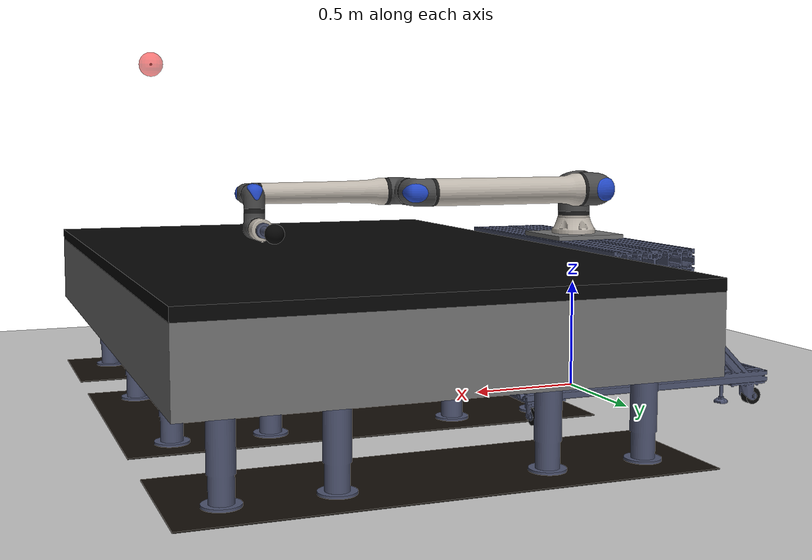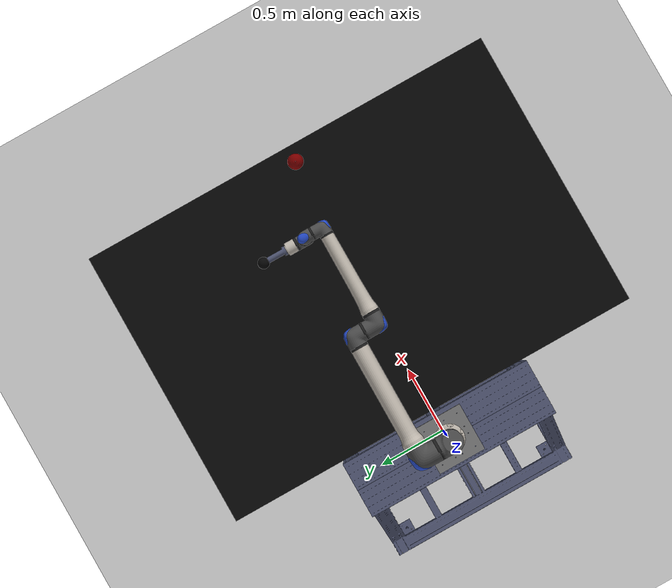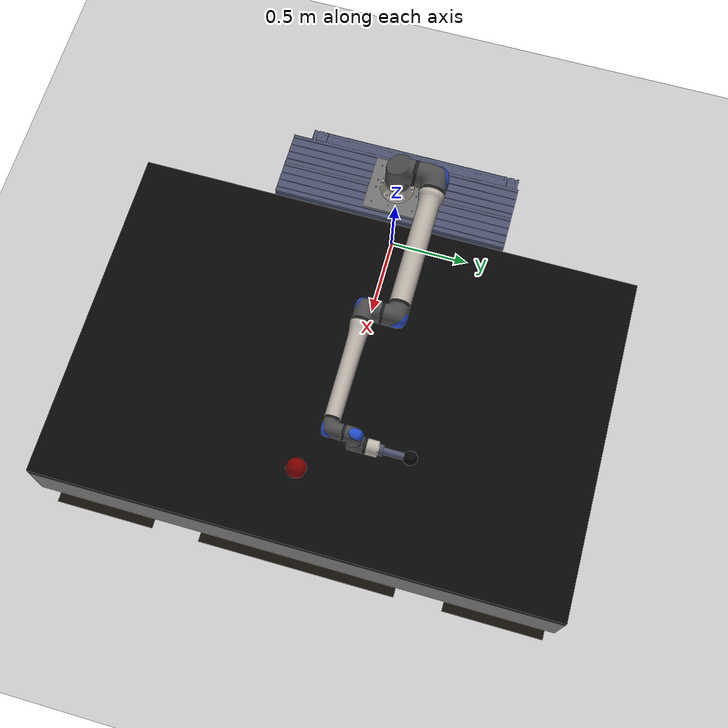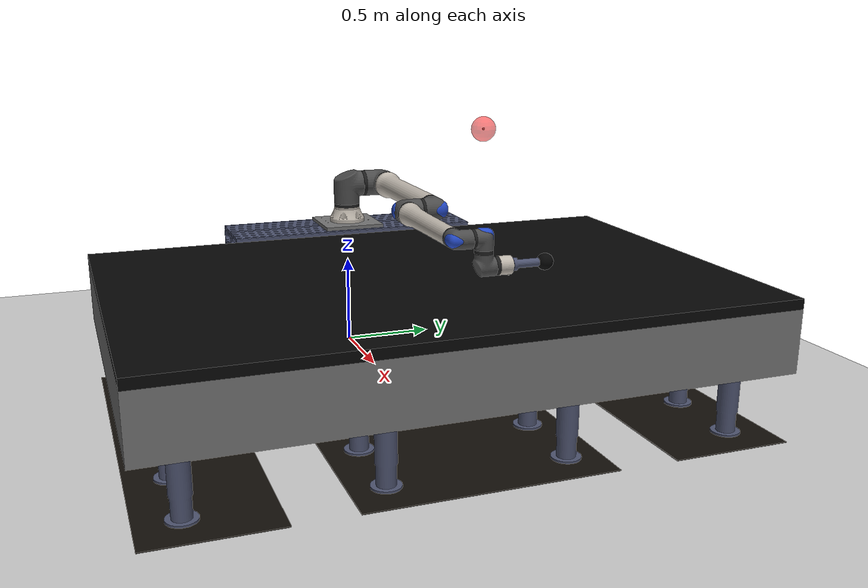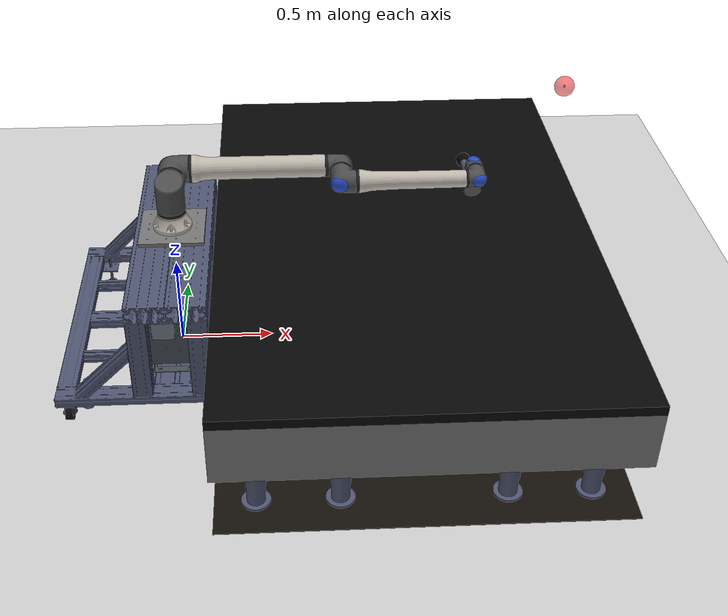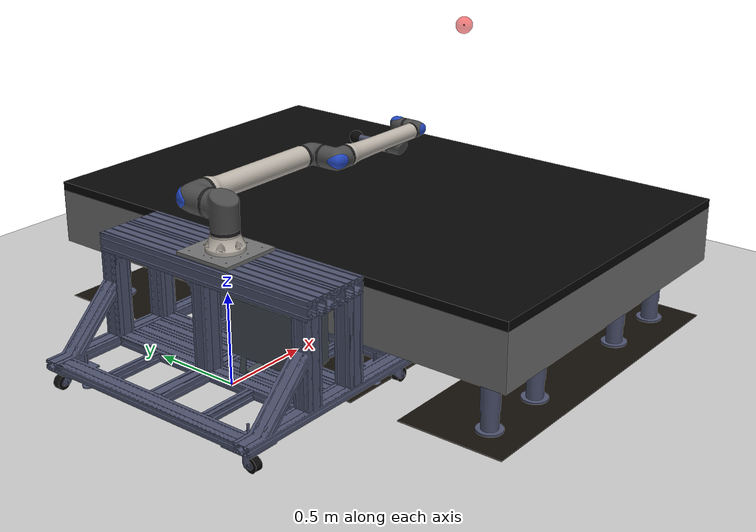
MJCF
<?xml version='1.0' encoding='utf-8'?>
<mujoco model="meios">
  <compiler angle="radian" />

  <default>
    <default class="visual">
      <geom type="mesh" group="2" contype="0" conaffinity="0" />
    </default>
    <default class="collision">
      <geom type="mesh" group="3" />
    </default>
  </default>

  <asset>
    <mesh name="UR8LongWorkbench_0" file="assets/UR8LongWorkbench_0.obj" content_type="model/obj" />
    <mesh name="UR8LongWorkbench_1" file="assets/UR8LongWorkbench_1.obj" content_type="model/obj" />
    <mesh name="UR8LongWorkbench_2" file="assets/UR8LongWorkbench_2.obj" content_type="model/obj" />
    <mesh name="UR8LongWorkbench_3" file="assets/UR8LongWorkbench_3.obj" content_type="model/obj" />
    <mesh name="GraniteTable_0" file="assets/GraniteTable_0.obj" content_type="model/obj" />
    <mesh name="GraniteTable_1" file="assets/GraniteTable_1.obj" content_type="model/obj" />
    <mesh name="GraniteTable_2" file="assets/GraniteTable_2.obj" content_type="model/obj" />
    <mesh name="GraniteTable_3" file="assets/GraniteTable_3.obj" content_type="model/obj" />
    <mesh name="base_0" file="assets/base_0.obj" content_type="model/obj" />
    <mesh name="base_1" file="assets/base_1.obj" content_type="model/obj" />
    <mesh name="base_2" file="assets/base_2.obj" content_type="model/obj" />
    <mesh name="shoulder_0" file="assets/shoulder_0.obj" content_type="model/obj" />
    <mesh name="shoulder_1" file="assets/shoulder_1.obj" content_type="model/obj" />
    <mesh name="upperarm_0" file="assets/upperarm_0.obj" content_type="model/obj" />
    <mesh name="upperarm_1" file="assets/upperarm_1.obj" content_type="model/obj" />
    <mesh name="upperarm_2" file="assets/upperarm_2.obj" content_type="model/obj" />
    <mesh name="upperarm_3" file="assets/upperarm_3.obj" content_type="model/obj" />
    <mesh name="forearm_0" file="assets/forearm_0.obj" content_type="model/obj" />
    <mesh name="forearm_1" file="assets/forearm_1.obj" content_type="model/obj" />
    <mesh name="forearm_2" file="assets/forearm_2.obj" content_type="model/obj" />
    <mesh name="forearm_3" file="assets/forearm_3.obj" content_type="model/obj" />
    <mesh name="wrist1_0" file="assets/wrist1_0.obj" content_type="model/obj" />
    <mesh name="wrist1_1" file="assets/wrist1_1.obj" content_type="model/obj" />
    <mesh name="wrist1_2" file="assets/wrist1_2.obj" content_type="model/obj" />
    <mesh name="wrist2_0" file="assets/wrist2_0.obj" content_type="model/obj" />
    <mesh name="wrist2_1" file="assets/wrist2_1.obj" content_type="model/obj" />
    <mesh name="wrist3" file="assets/wrist3.obj" content_type="model/obj" />
    <mesh name="SimpleRodEndEffector_0" file="assets/SimpleRodEndEffector_0.obj" content_type="model/obj" />
    <mesh name="SimpleRodEndEffector_1" file="assets/SimpleRodEndEffector_1.obj" content_type="model/obj" />
    <material name="Material.002" rgba="0.4538652 0.4538652 0.4538652 1.0" shininess="0.01" specular="0.400000006" />
    <material name="Material.005" rgba="0.0413336605 0.0413336605 0.0413336605 1.0" shininess="0.01" specular="0.400000006" />
    <material name="mat_0" rgba="0.304448187 0.328116894 0.437909514 1.0" shininess="0.01" specular="0.400000006" />
    <material name="mat_1" rgba="0.265210003 0.292892992 0.322058111 1.0" shininess="0.01" specular="0.400000006" />
    <material name="Material.001" rgba="0.0271487199 0.0271487199 0.0271487199 1.0" shininess="0.01" specular="0.400000006" />
    <material name="Material.003" rgba="0.0730518326 0.0555744693 0.0355741605 1.0" shininess="0.01" specular="0.400000006" />
    <texture name="UR15_DIFF_8bit_2K" type="2d" file="assets/UR15_DIFF_8bit_2K.png" />
    <material name="LED_001_COLOR_0" shininess="0.01" specular="0.400000006" texture="UR15_DIFF_8bit_2K" />
    <material name="Metal_Alu_Brushed_002_COLOR_0" shininess="0.01" specular="0.400000006" texture="UR15_DIFF_8bit_2K" />
    <material name="Rubber_Black_002_COLOR_0" shininess="0.01" specular="0.400000006" texture="UR15_DIFF_8bit_2K" />
    <material name="Metal_DarkGray_002_COLOR_0" shininess="0.01" specular="0.400000006" texture="UR15_DIFF_8bit_2K" />
    <texture name="UR8Long_DIFF_8bit_2K" type="2d" file="assets/UR8Long_DIFF_8bit_2K.png" />
    <material name="Metal_Alu_Brushed.001" shininess="0.01" specular="0.400000006" texture="UR8Long_DIFF_8bit_2K" />
    <material name="Metal_DarkGray.001" shininess="0.01" specular="0.400000006" texture="UR8Long_DIFF_8bit_2K" />
    <material name="Plastic_Blue" shininess="0.01" specular="0.400000006" texture="UR8Long_DIFF_8bit_2K" />
    <material name="Rubber_Black.001" shininess="0.01" specular="0.400000006" texture="UR8Long_DIFF_8bit_2K" />
    <material name="Metal_DarkGray_003" shininess="0.01" specular="0.400000006" texture="UR15_DIFF_8bit_2K" />
    <material name="Plastic_Blue_001" shininess="0.01" specular="0.400000006" texture="UR15_DIFF_8bit_2K" />
    <material name="Rubber_Black_003" shininess="0.01" specular="0.400000006" texture="UR15_DIFF_8bit_2K" />
  </asset>

  <worldbody>
    <geom class="visual" pos="0 0 0.74" quat="1 0 0 0" material="mat_1" mesh="UR8LongWorkbench_0" />
    <geom class="visual" pos="0 0 0.74" quat="1 0 0 0" material="Material.002" mesh="UR8LongWorkbench_1" />
    <geom class="visual" pos="0 0 0.74" quat="1 0 0 0" material="Material.005" mesh="UR8LongWorkbench_2" />
    <geom class="visual" pos="0 0 0.74" quat="1 0 0 0" material="mat_0" mesh="UR8LongWorkbench_3" />
    <geom class="collision" pos="0 0 0.74" quat="1 0 0 0" mesh="UR8LongWorkbench_0" />
    <geom class="collision" pos="0 0 0.74" quat="1 0 0 0" mesh="UR8LongWorkbench_1" />
    <geom class="collision" pos="0 0 0.74" quat="1 0 0 0" mesh="UR8LongWorkbench_2" />
    <geom class="collision" pos="0 0 0.74" quat="1 0 0 0" mesh="UR8LongWorkbench_3" />
    <geom class="visual" pos="0 0 0.74" quat="-1 0 0 0" material="LED_001_COLOR_0" mesh="base_0" />
    <geom class="visual" pos="0 0 0.74" quat="-1 0 0 0" material="Rubber_Black_002_COLOR_0" mesh="base_1" />
    <geom class="visual" pos="0 0 0.74" quat="-1 0 0 0" material="Metal_Alu_Brushed_002_COLOR_0" mesh="base_2" />
    <geom class="collision" pos="0 0 0.74" quat="-1 0 0 0" mesh="base_0" />
    <geom class="collision" pos="0 0 0.74" quat="-1 0 0 0" mesh="base_1" />
    <geom class="collision" pos="0 0 0.74" quat="-1 0 0 0" mesh="base_2" />
    <geom class="visual" pos="1.22 0 0" quat="1 0 0 0" material="Material.003" mesh="GraniteTable_0" />
    <geom class="visual" pos="1.22 0 0" quat="1 0 0 0" material="mat_0" mesh="GraniteTable_1" />
    <geom class="visual" pos="1.22 0 0" quat="1 0 0 0" material="Material.002" mesh="GraniteTable_2" />
    <geom class="visual" pos="1.22 0 0" quat="1 0 0 0" material="Material.001" mesh="GraniteTable_3" />
    <geom class="collision" pos="1.22 0 0" quat="1 0 0 0" mesh="GraniteTable_0" />
    <geom class="collision" pos="1.22 0 0" quat="1 0 0 0" mesh="GraniteTable_1" />
    <geom class="collision" pos="1.22 0 0" quat="1 0 0 0" mesh="GraniteTable_2" />
    <geom class="collision" pos="1.22 0 0" quat="1 0 0 0" mesh="GraniteTable_3" friction="0 0 0" priority="2" />
    <body name="ur_main/shoulder_link" pos="0 0 0.9586" quat="0 0 0 1">
      <inertial pos="2.4e-05 -0.025304 -0.033309" quat="0.695667 0.163117 -0.158899 0.681316" diaginertia="0.0520589 0.0513337 0.0299064" mass="9.9883" />
      <joint name="ur_main/shoulder_pan_joint" pos="0 0 0" axis="0 0 1" actuatorfrcrange="-433 433" range="-6.28319 6.28319" damping="100" stiffness="0.1" />
      <geom class="visual" pos="0 0 0" quat="0 0 0 1" material="Rubber_Black_002_COLOR_0" mesh="shoulder_0" />
      <geom class="visual" pos="0 0 0" quat="0 0 0 1" material="Metal_DarkGray_002_COLOR_0" mesh="shoulder_1" />
      <geom class="collision" pos="0 0 0" quat="0 0 0 1" mesh="shoulder_0" />
      <geom class="collision" pos="0 0 0" quat="0 0 0 1" mesh="shoulder_1" />
      <body name="ur_main/upper_arm_link" quat="0.707107 0.707107 0 0">
        <inertial pos="-0.333471 -7.4e-05 0.19542" quat="0.506621 0.493391 0.495006 0.504845" diaginertia="2.44012 2.43401 0.0554434" mass="17.0738" />
        <joint name="ur_main/shoulder_lift_joint" pos="0 0 0" axis="0 0 1" actuatorfrcrange="-433 433" range="-1.1 -1.0" damping="100" stiffness="0.1" />
        <geom class="visual" pos="0 0 0.109" quat="0.5 0.5 -0.5 -0.5" material="Rubber_Black.001" mesh="upperarm_0" />
        <geom class="visual" pos="0 0 0.109" quat="0.5 0.5 -0.5 -0.5" material="Metal_Alu_Brushed.001" mesh="upperarm_1" />
        <geom class="visual" pos="0 0 0.109" quat="0.5 0.5 -0.5 -0.5" material="Metal_DarkGray.001" mesh="upperarm_2" />
        <geom class="visual" pos="0 0 0.109" quat="0.5 0.5 -0.5 -0.5" material="Plastic_Blue" mesh="upperarm_3" />
        <geom class="collision" pos="0 0 0.109" quat="0.5 0.5 -0.5 -0.5" mesh="upperarm_0" />
        <geom class="collision" pos="0 0 0.109" quat="0.5 0.5 -0.5 -0.5" mesh="upperarm_1" />
        <geom class="collision" pos="0 0 0.109" quat="0.5 0.5 -0.5 -0.5" mesh="upperarm_2" />
        <geom class="collision" pos="0 0 0.109" quat="0.5 0.5 -0.5 -0.5" mesh="upperarm_3" />
        <body name="ur_main/forearm_link" pos="-0.8989 0 0">
          <inertial pos="-0.298798 5.8e-05 0.065663" quat="0.491605 0.508309 0.507913 0.491905" diaginertia="0.633274 0.626536 0.0215007" mass="7.6393" />
          <joint name="ur_main/elbow_joint" pos="0 0 0" axis="0 0 1" actuatorfrcrange="-204 204" range="0.8 0.81" damping="100" stiffness="0.1" />
          <geom class="visual" pos="0 0 0.134242" quat="0.5 0.5 -0.5 -0.5" material="Rubber_Black.001" mesh="forearm_0" />
          <geom class="visual" pos="0 0 0.134242" quat="0.5 0.5 -0.5 -0.5" material="Metal_Alu_Brushed.001" mesh="forearm_1" />
          <geom class="visual" pos="0 0 0.134242" quat="0.5 0.5 -0.5 -0.5" material="Metal_DarkGray.001" mesh="forearm_2" />
          <geom class="visual" pos="0 0 0.134242" quat="0.5 0.5 -0.5 -0.5" material="Plastic_Blue" mesh="forearm_3" />
          <geom class="collision" pos="0 0 0.134242" quat="0.5 0.5 -0.5 -0.5" mesh="forearm_0" />
          <geom class="collision" pos="0 0 0.134242" quat="0.5 0.5 -0.5 -0.5" mesh="forearm_1" />
          <geom class="collision" pos="0 0 0.134242" quat="0.5 0.5 -0.5 -0.5" mesh="forearm_2" />
          <geom class="collision" pos="0 0 0.134242" quat="0.5 0.5 -0.5 -0.5" mesh="forearm_3" />
          <body name="ur_main/wrist_1_link" pos="-0.7149 0 0.1824">
            <inertial pos="2.5e-05 -0.016413 -0.019695" quat="0.833332 0.5518 -0.0145415 0.0293715" diaginertia="0.00433968 0.00421107 0.00224825" mass="2.089" />
            <joint name="ur_main/wrist_1_joint" pos="0 0 0" axis="0 0 1" actuatorfrcrange="-70 70" range="1.0 1.1" damping="100" stiffness="0.1" />
            <geom class="visual" pos="0 0 -0.0502" quat="0.707107 0.707107 0 0" material="Plastic_Blue_001" mesh="wrist1_0" />
            <geom class="visual" pos="0 0 -0.0502" quat="0.707107 0.707107 0 0" material="Rubber_Black_003" mesh="wrist1_1" />
            <geom class="visual" pos="0 0 -0.0502" quat="0.707107 0.707107 0 0" material="Metal_DarkGray_003" mesh="wrist1_2" />
            <geom class="collision" pos="0 0 -0.0502" quat="0.707107 0.707107 0 0" mesh="wrist1_0" />
            <geom class="collision" pos="0 0 -0.0502" quat="0.707107 0.707107 0 0" mesh="wrist1_1" />
            <geom class="collision" pos="0 0 -0.0502" quat="0.707107 0.707107 0 0" mesh="wrist1_2" />
            <body name="ur_main/wrist_2_link" pos="0 -0.1361 -2.79146e-11" quat="0.707107 0.707107 0 0">
              <inertial pos="2.5e-05 0.015886 -0.01996" quat="0.548572 0.831821 0.0724532 -0.0435051" diaginertia="0.00428972 0.00423268 0.0022586" mass="2.0869" />
              <joint name="ur_main/wrist_2_joint" pos="0 0 0" axis="0 0 1" actuatorfrcrange="-70 70" range="1.57 1.58" damping="100" stiffness="0.1" />
              <geom class="visual" pos="0 0 -0.064" quat="1 0 0 0" material="Rubber_Black_002_COLOR_0" mesh="wrist2_0" />
              <geom class="visual" pos="0 0 -0.064" quat="1 0 0 0" material="Metal_DarkGray_002_COLOR_0" mesh="wrist2_1" />
              <geom class="collision" pos="0 0 -0.064" quat="1 0 0 0" mesh="wrist2_0" />
              <geom class="collision" pos="0 0 -0.064" quat="1 0 0 0" mesh="wrist2_1" />
              <body name="ur_main/wrist_3_link" pos="0 0.1434 -2.94118e-11" quat="0.707107 -0.707107 0 0">
                <inertial pos="-1.08771e-05 -6.66767e-05 0.00999254" quat="0.950776 -0.000991184 -0.000659664 -0.309877" diaginertia="0.0150691 0.0150627 0.00129956" mass="1.79162" />
                <joint name="ur_main/wrist_3_joint" pos="0 0 0" axis="0 0 1" actuatorfrcrange="-70 70" range="-6.28319 6.28319" damping="100" stiffness="0.1" />
                <geom class="visual" pos="0 0 -0.0715" quat="0.707107 0.707107 0 0" material="Metal_Alu_Brushed_002_COLOR_0" mesh="wrist3" />
                <geom class="collision" pos="0 0 -0.0715" quat="0.707107 0.707107 0 0" mesh="wrist3" />
                <geom class="visual" pos="0 0 0" quat="0.707107 0 0 -0.707107" material="Material.001" mesh="SimpleRodEndEffector_0" />
                <geom class="visual" pos="0 0 0" quat="0.707107 0 0 -0.707107" material="mat_0" mesh="SimpleRodEndEffector_1" />
                <geom class="collision" pos="0 0 0" quat="0.707107 0 0 -0.707107" mesh="SimpleRodEndEffector_0" />
                <geom class="collision" pos="0 0 0" quat="0.707107 0 0 -0.707107" mesh="SimpleRodEndEffector_1" />
              </body>
            </body>
          </body>
        </body>
      </body>
    </body>

    <body name="eeff" pos="2 0 1.5" gravcomp="1">
      <site name="eeff" pos="0 0 0"/>

      <joint name="eeff_x" type="slide" axis="1 0 0"/>
      <joint name="eeff_y" type="slide" axis="0 1 0"/>
      <joint name="eeff_z" type="slide" axis="0 0 1"/>

      <geom
          name="eeff_contact"
          type="sphere"
          size="0.05"
          mass="0.01"
          rgba="1 0 0 0.5"
          contype="1"
          conaffinity="1"/>

    </body>

    <light name="overview_light" pos="0 -3 5" diffuse="1 1 1" dir="0 1 -1" specular="0.3 0.3 0.3" />
    <camera name="overview" pos="3 -4 3" xyaxes="1 0.75 0 -0.45 0.6 0.66" />
    <geom name="floor" type="plane" pos="0 0 0" size="5 5 0.1" rgba="0.8 0.8 0.8 1" />
  </worldbody>

  <actuator>
    <motor joint="eeff_x" gear="1" ctrllimited="true" ctrlrange="-1 1"/>
    <motor joint="eeff_y" gear="1" ctrllimited="true" ctrlrange="-1 1"/>
    <motor joint="eeff_z" gear="1" ctrllimited="true" ctrlrange="-1 1"/>
  </actuator>
</mujoco>
